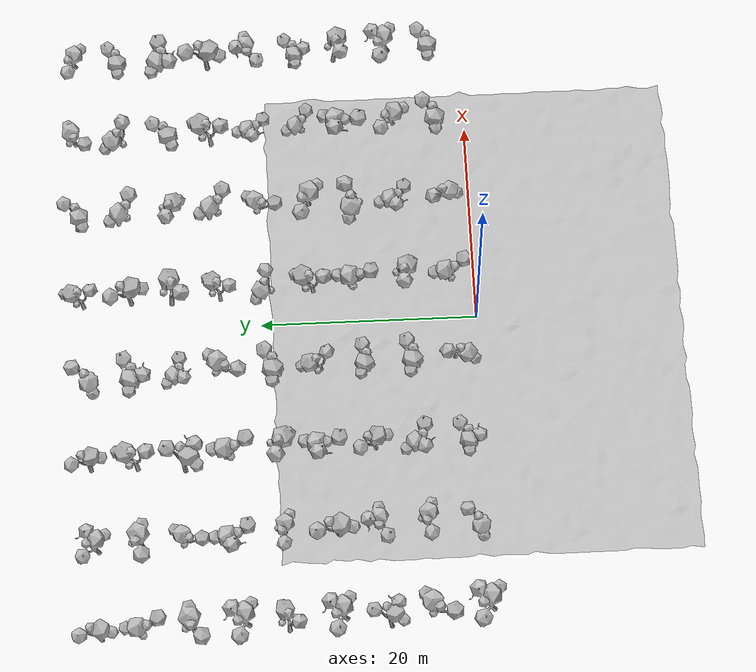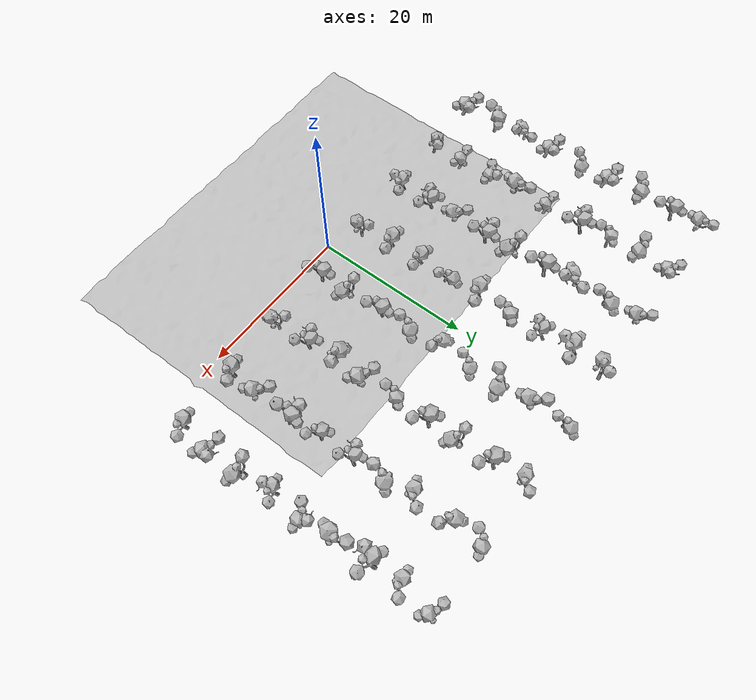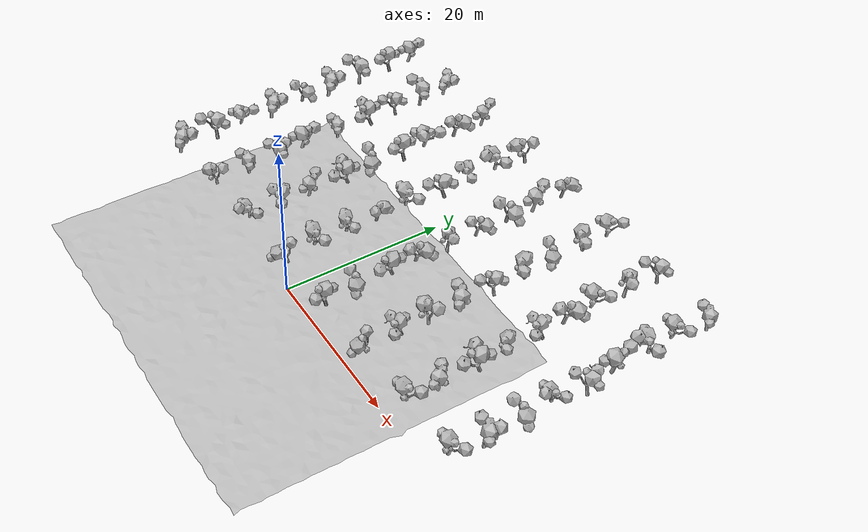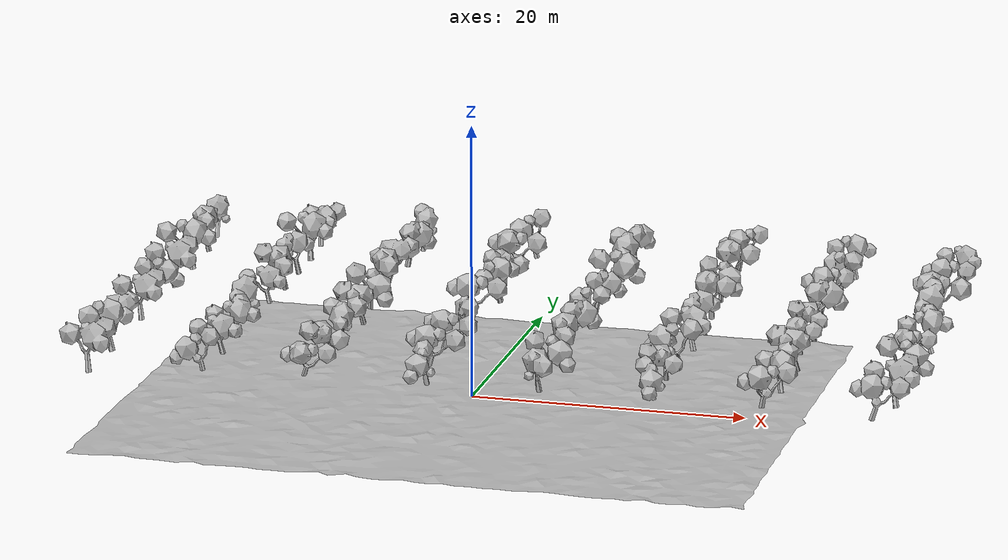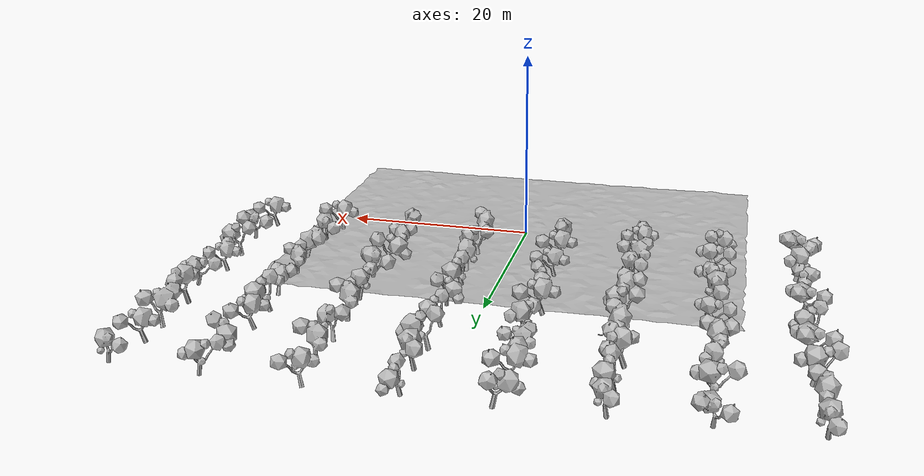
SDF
<sdf version="1.4">
 <world name="procedural_orchard">
  <model name="orchard_ground">
   <static>true</static>
   <link name="link">
    <collision name="col">
     <geometry><mesh><uri>model://orchard/orchard_world.dae</uri></mesh></geometry>
    </collision>
    <visual name="vis"><geometry><mesh><uri>model://orchard/orchard_world.dae</uri></mesh></geometry></visual>
   </link>
  </model>
  <model name="tree_1">
   <static>true</static>
   <pose>-30.349 35.8752 0 0 0 3.98007</pose>
   <link name="link">
    <visual name="visual">
     <geometry>
      <mesh><uri>model://orchard/orchard_tree_1.dae</uri><scale>2.42346 2.42346 2.42346</scale></mesh>
     </geometry>
    </visual>
    <collision name="trunk_collision">
     <pose>0 0 1 0 0 0</pose>
     <geometry><cylinder><radius>0.25</radius><length>2</length></cylinder></geometry>
    </collision>
   </link>
  </model>
  <model name="tree_2">
   <static>true</static>
   <pose>-21.9567 36.0772 0 0 0 3.64227</pose>
   <link name="link">
    <visual name="visual">
     <geometry>
      <mesh><uri>model://orchard/orchard_tree_5.dae</uri><scale>2.37712 2.37712 2.37712</scale></mesh>
     </geometry>
    </visual>
    <collision name="trunk_collision">
     <pose>0 0 1 0 0 0</pose>
     <geometry><cylinder><radius>0.25</radius><length>2</length></cylinder></geometry>
    </collision>
   </link>
  </model>
  <model name="tree_3">
   <static>true</static>
   <pose>-13.5645 36.2793 0 0 0 2.64878</pose>
   <link name="link">
    <visual name="visual">
     <geometry>
      <mesh><uri>model://orchard/orchard_tree_4.dae</uri><scale>2.35116 2.35116 2.35116</scale></mesh>
     </geometry>
    </visual>
    <collision name="trunk_collision">
     <pose>0 0 1 0 0 0</pose>
     <geometry><cylinder><radius>0.25</radius><length>2</length></cylinder></geometry>
    </collision>
   </link>
  </model>
  <model name="tree_4">
   <static>true</static>
   <pose>-5.17219 36.4813 0 0 0 2.39877</pose>
   <link name="link">
    <visual name="visual">
     <geometry>
      <mesh><uri>model://orchard/orchard_tree_3.dae</uri><scale>2.54865 2.54865 2.54865</scale></mesh>
     </geometry>
    </visual>
    <collision name="trunk_collision">
     <pose>0 0 1 0 0 0</pose>
     <geometry><cylinder><radius>0.25</radius><length>2</length></cylinder></geometry>
    </collision>
   </link>
  </model>
  <model name="tree_5">
   <static>true</static>
   <pose>3.22008 36.6834 0 0 0 6.21447</pose>
   <link name="link">
    <visual name="visual">
     <geometry>
      <mesh><uri>model://orchard/orchard_tree_3.dae</uri><scale>2.31543 2.31543 2.31543</scale></mesh>
     </geometry>
    </visual>
    <collision name="trunk_collision">
     <pose>0 0 1 0 0 0</pose>
     <geometry><cylinder><radius>0.25</radius><length>2</length></cylinder></geometry>
    </collision>
   </link>
  </model>
  <model name="tree_6">
   <static>true</static>
   <pose>11.6124 36.8855 0 0 0 1.43705</pose>
   <link name="link">
    <visual name="visual">
     <geometry>
      <mesh><uri>model://orchard/orchard_tree_4.dae</uri><scale>2.38347 2.38347 2.38347</scale></mesh>
     </geometry>
    </visual>
    <collision name="trunk_collision">
     <pose>0 0 1 0 0 0</pose>
     <geometry><cylinder><radius>0.25</radius><length>2</length></cylinder></geometry>
    </collision>
   </link>
  </model>
  <model name="tree_7">
   <static>true</static>
   <pose>20.0046 37.0875 0 0 0 4.54167</pose>
   <link name="link">
    <visual name="visual">
     <geometry>
      <mesh><uri>model://orchard/orchard_tree_4.dae</uri><scale>2.37984 2.37984 2.37984</scale></mesh>
     </geometry>
    </visual>
    <collision name="trunk_collision">
     <pose>0 0 1 0 0 0</pose>
     <geometry><cylinder><radius>0.25</radius><length>2</length></cylinder></geometry>
    </collision>
   </link>
  </model>
  <model name="tree_8">
   <static>true</static>
   <pose>28.3969 37.2896 0 0 0 5.00894</pose>
   <link name="link">
    <visual name="visual">
     <geometry>
      <mesh><uri>model://orchard/orchard_tree_1.dae</uri><scale>2.31265 2.31265 2.31265</scale></mesh>
     </geometry>
    </visual>
    <collision name="trunk_collision">
     <pose>0 0 1 0 0 0</pose>
     <geometry><cylinder><radius>0.25</radius><length>2</length></cylinder></geometry>
    </collision>
   </link>
  </model>
  <model name="tree_9">
   <static>true</static>
   <pose>-30.2198 31.5146 0 0 0 5.7149</pose>
   <link name="link">
    <visual name="visual">
     <geometry>
      <mesh><uri>model://orchard/orchard_tree_4.dae</uri><scale>2.52768 2.52768 2.52768</scale></mesh>
     </geometry>
    </visual>
    <collision name="trunk_collision">
     <pose>0 0 1 0 0 0</pose>
     <geometry><cylinder><radius>0.25</radius><length>2</length></cylinder></geometry>
    </collision>
   </link>
  </model>
  <model name="tree_10">
   <static>true</static>
   <pose>-21.8316 31.7329 0 0 0 3.92387</pose>
   <link name="link">
    <visual name="visual">
     <geometry>
      <mesh><uri>model://orchard/orchard_tree_4.dae</uri><scale>2.63545 2.63545 2.63545</scale></mesh>
     </geometry>
    </visual>
    <collision name="trunk_collision">
     <pose>0 0 1 0 0 0</pose>
     <geometry><cylinder><radius>0.25</radius><length>2</length></cylinder></geometry>
    </collision>
   </link>
  </model>
  <model name="tree_11">
   <static>true</static>
   <pose>-13.4435 31.9512 0 0 0 6.10366</pose>
   <link name="link">
    <visual name="visual">
     <geometry>
      <mesh><uri>model://orchard/orchard_tree_3.dae</uri><scale>2.59826 2.59826 2.59826</scale></mesh>
     </geometry>
    </visual>
    <collision name="trunk_collision">
     <pose>0 0 1 0 0 0</pose>
     <geometry><cylinder><radius>0.25</radius><length>2</length></cylinder></geometry>
    </collision>
   </link>
  </model>
  <model name="tree_12">
   <static>true</static>
   <pose>-5.0553 32.1694 0 0 0 1.4179</pose>
   <link name="link">
    <visual name="visual">
     <geometry>
      <mesh><uri>model://orchard/orchard_tree_5.dae</uri><scale>2.67865 2.67865 2.67865</scale></mesh>
     </geometry>
    </visual>
    <collision name="trunk_collision">
     <pose>0 0 1 0 0 0</pose>
     <geometry><cylinder><radius>0.25</radius><length>2</length></cylinder></geometry>
    </collision>
   </link>
  </model>
  <model name="tree_13">
   <static>true</static>
   <pose>3.33286 32.3877 0 0 0 2.68912</pose>
   <link name="link">
    <visual name="visual">
     <geometry>
      <mesh><uri>model://orchard/orchard_tree_4.dae</uri><scale>2.6427 2.6427 2.6427</scale></mesh>
     </geometry>
    </visual>
    <collision name="trunk_collision">
     <pose>0 0 1 0 0 0</pose>
     <geometry><cylinder><radius>0.25</radius><length>2</length></cylinder></geometry>
    </collision>
   </link>
  </model>
  <model name="tree_14">
   <static>true</static>
   <pose>11.721 32.606 0 0 0 0.158857</pose>
   <link name="link">
    <visual name="visual">
     <geometry>
      <mesh><uri>model://orchard/orchard_tree_4.dae</uri><scale>2.59692 2.59692 2.59692</scale></mesh>
     </geometry>
    </visual>
    <collision name="trunk_collision">
     <pose>0 0 1 0 0 0</pose>
     <geometry><cylinder><radius>0.25</radius><length>2</length></cylinder></geometry>
    </collision>
   </link>
  </model>
  <model name="tree_15">
   <static>true</static>
   <pose>20.1092 32.8242 0 0 0 0.981096</pose>
   <link name="link">
    <visual name="visual">
     <geometry>
      <mesh><uri>model://orchard/orchard_tree_3.dae</uri><scale>2.49143 2.49143 2.49143</scale></mesh>
     </geometry>
    </visual>
    <collision name="trunk_collision">
     <pose>0 0 1 0 0 0</pose>
     <geometry><cylinder><radius>0.25</radius><length>2</length></cylinder></geometry>
    </collision>
   </link>
  </model>
  <model name="tree_16">
   <static>true</static>
   <pose>28.4973 33.0425 0 0 0 2.65836</pose>
   <link name="link">
    <visual name="visual">
     <geometry>
      <mesh><uri>model://orchard/orchard_tree_1.dae</uri><scale>2.42857 2.42857 2.42857</scale></mesh>
     </geometry>
    </visual>
    <collision name="trunk_collision">
     <pose>0 0 1 0 0 0</pose>
     <geometry><cylinder><radius>0.25</radius><length>2</length></cylinder></geometry>
    </collision>
   </link>
  </model>
  <model name="tree_17">
   <static>true</static>
   <pose>-30.0906 27.1541 0 0 0 4.29002</pose>
   <link name="link">
    <visual name="visual">
     <geometry>
      <mesh><uri>model://orchard/orchard_tree_4.dae</uri><scale>2.70376 2.70376 2.70376</scale></mesh>
     </geometry>
    </visual>
    <collision name="trunk_collision">
     <pose>0 0 1 0 0 0</pose>
     <geometry><cylinder><radius>0.25</radius><length>2</length></cylinder></geometry>
    </collision>
   </link>
  </model>
  <model name="tree_18">
   <static>true</static>
   <pose>-21.7065 27.3886 0 0 0 5.07734</pose>
   <link name="link">
    <visual name="visual">
     <geometry>
      <mesh><uri>model://orchard/orchard_tree_4.dae</uri><scale>2.31329 2.31329 2.31329</scale></mesh>
     </geometry>
    </visual>
    <collision name="trunk_collision">
     <pose>0 0 1 0 0 0</pose>
     <geometry><cylinder><radius>0.25</radius><length>2</length></cylinder></geometry>
    </collision>
   </link>
  </model>
  <model name="tree_19">
   <static>true</static>
   <pose>-13.3225 27.623 0 0 0 2.28356</pose>
   <link name="link">
    <visual name="visual">
     <geometry>
      <mesh><uri>model://orchard/orchard_tree_5.dae</uri><scale>2.68747 2.68747 2.68747</scale></mesh>
     </geometry>
    </visual>
    <collision name="trunk_collision">
     <pose>0 0 1 0 0 0</pose>
     <geometry><cylinder><radius>0.25</radius><length>2</length></cylinder></geometry>
    </collision>
   </link>
  </model>
  <model name="tree_20">
   <static>true</static>
   <pose>-4.93842 27.8575 0 0 0 0.844092</pose>
   <link name="link">
    <visual name="visual">
     <geometry>
      <mesh><uri>model://orchard/orchard_tree_5.dae</uri><scale>2.29268 2.29268 2.29268</scale></mesh>
     </geometry>
    </visual>
    <collision name="trunk_collision">
     <pose>0 0 1 0 0 0</pose>
     <geometry><cylinder><radius>0.25</radius><length>2</length></cylinder></geometry>
    </collision>
   </link>
  </model>
  <model name="tree_21">
   <static>true</static>
   <pose>3.44563 28.092 0 0 0 5.22046</pose>
   <link name="link">
    <visual name="visual">
     <geometry>
      <mesh><uri>model://orchard/orchard_tree_3.dae</uri><scale>2.71954 2.71954 2.71954</scale></mesh>
     </geometry>
    </visual>
    <collision name="trunk_collision">
     <pose>0 0 1 0 0 0</pose>
     <geometry><cylinder><radius>0.25</radius><length>2</length></cylinder></geometry>
    </collision>
   </link>
  </model>
  <model name="tree_22">
   <static>true</static>
   <pose>11.8297 28.3265 0 0 0 4.32382</pose>
   <link name="link">
    <visual name="visual">
     <geometry>
      <mesh><uri>model://orchard/orchard_tree_3.dae</uri><scale>2.46313 2.46313 2.46313</scale></mesh>
     </geometry>
    </visual>
    <collision name="trunk_collision">
     <pose>0 0 1 0 0 0</pose>
     <geometry><cylinder><radius>0.25</radius><length>2</length></cylinder></geometry>
    </collision>
   </link>
  </model>
  <model name="tree_23">
   <static>true</static>
   <pose>20.2137 28.561 0 0 0 2.97546</pose>
   <link name="link">
    <visual name="visual">
     <geometry>
      <mesh><uri>model://orchard/orchard_tree_1.dae</uri><scale>2.49655 2.49655 2.49655</scale></mesh>
     </geometry>
    </visual>
    <collision name="trunk_collision">
     <pose>0 0 1 0 0 0</pose>
     <geometry><cylinder><radius>0.25</radius><length>2</length></cylinder></geometry>
    </collision>
   </link>
  </model>
  <model name="tree_24">
   <static>true</static>
   <pose>28.5978 28.7954 0 0 0 1.05184</pose>
   <link name="link">
    <visual name="visual">
     <geometry>
      <mesh><uri>model://orchard/orchard_tree_5.dae</uri><scale>2.74076 2.74076 2.74076</scale></mesh>
     </geometry>
    </visual>
    <collision name="trunk_collision">
     <pose>0 0 1 0 0 0</pose>
     <geometry><cylinder><radius>0.25</radius><length>2</length></cylinder></geometry>
    </collision>
   </link>
  </model>
  <model name="tree_25">
   <static>true</static>
   <pose>-29.9613 22.7935 0 0 0 4.08577</pose>
   <link name="link">
    <visual name="visual">
     <geometry>
      <mesh><uri>model://orchard/orchard_tree_5.dae</uri><scale>2.67586 2.67586 2.67586</scale></mesh>
     </geometry>
    </visual>
    <collision name="trunk_collision">
     <pose>0 0 1 0 0 0</pose>
     <geometry><cylinder><radius>0.25</radius><length>2</length></cylinder></geometry>
    </collision>
   </link>
  </model>
  <model name="tree_26">
   <static>true</static>
   <pose>-21.5814 23.0442 0 0 0 0.0465613</pose>
   <link name="link">
    <visual name="visual">
     <geometry>
      <mesh><uri>model://orchard/orchard_tree_5.dae</uri><scale>2.60549 2.60549 2.60549</scale></mesh>
     </geometry>
    </visual>
    <collision name="trunk_collision">
     <pose>0 0 1 0 0 0</pose>
     <geometry><cylinder><radius>0.25</radius><length>2</length></cylinder></geometry>
    </collision>
   </link>
  </model>
  <model name="tree_27">
   <static>true</static>
   <pose>-13.2015 23.2949 0 0 0 5.74862</pose>
   <link name="link">
    <visual name="visual">
     <geometry>
      <mesh><uri>model://orchard/orchard_tree_4.dae</uri><scale>2.64948 2.64948 2.64948</scale></mesh>
     </geometry>
    </visual>
    <collision name="trunk_collision">
     <pose>0 0 1 0 0 0</pose>
     <geometry><cylinder><radius>0.25</radius><length>2</length></cylinder></geometry>
    </collision>
   </link>
  </model>
  <model name="tree_28">
   <static>true</static>
   <pose>-4.82153 23.5456 0 0 0 0.260761</pose>
   <link name="link">
    <visual name="visual">
     <geometry>
      <mesh><uri>model://orchard/orchard_tree_1.dae</uri><scale>2.55489 2.55489 2.55489</scale></mesh>
     </geometry>
    </visual>
    <collision name="trunk_collision">
     <pose>0 0 1 0 0 0</pose>
     <geometry><cylinder><radius>0.25</radius><length>2</length></cylinder></geometry>
    </collision>
   </link>
  </model>
  <model name="tree_29">
   <static>true</static>
   <pose>3.55841 23.7963 0 0 0 5.75821</pose>
   <link name="link">
    <visual name="visual">
     <geometry>
      <mesh><uri>model://orchard/orchard_tree_3.dae</uri><scale>2.35889 2.35889 2.35889</scale></mesh>
     </geometry>
    </visual>
    <collision name="trunk_collision">
     <pose>0 0 1 0 0 0</pose>
     <geometry><cylinder><radius>0.25</radius><length>2</length></cylinder></geometry>
    </collision>
   </link>
  </model>
  <model name="tree_30">
   <static>true</static>
   <pose>11.9383 24.047 0 0 0 0.0113304</pose>
   <link name="link">
    <visual name="visual">
     <geometry>
      <mesh><uri>model://orchard/orchard_tree_4.dae</uri><scale>2.61767 2.61767 2.61767</scale></mesh>
     </geometry>
    </visual>
    <collision name="trunk_collision">
     <pose>0 0 1 0 0 0</pose>
     <geometry><cylinder><radius>0.25</radius><length>2</length></cylinder></geometry>
    </collision>
   </link>
  </model>
  <model name="tree_31">
   <static>true</static>
   <pose>20.3183 24.2977 0 0 0 5.91174</pose>
   <link name="link">
    <visual name="visual">
     <geometry>
      <mesh><uri>model://orchard/orchard_tree_3.dae</uri><scale>2.6887 2.6887 2.6887</scale></mesh>
     </geometry>
    </visual>
    <collision name="trunk_collision">
     <pose>0 0 1 0 0 0</pose>
     <geometry><cylinder><radius>0.25</radius><length>2</length></cylinder></geometry>
    </collision>
   </link>
  </model>
  <model name="tree_32">
   <static>true</static>
   <pose>28.6982 24.5484 0 0 0 2.30677</pose>
   <link name="link">
    <visual name="visual">
     <geometry>
      <mesh><uri>model://orchard/orchard_tree_4.dae</uri><scale>2.74544 2.74544 2.74544</scale></mesh>
     </geometry>
    </visual>
    <collision name="trunk_collision">
     <pose>0 0 1 0 0 0</pose>
     <geometry><cylinder><radius>0.25</radius><length>2</length></cylinder></geometry>
    </collision>
   </link>
  </model>
  <model name="tree_33">
   <static>true</static>
   <pose>-29.8321 18.433 0 0 0 5.40505</pose>
   <link name="link">
    <visual name="visual">
     <geometry>
      <mesh><uri>model://orchard/orchard_tree_3.dae</uri><scale>2.41502 2.41502 2.41502</scale></mesh>
     </geometry>
    </visual>
    <collision name="trunk_collision">
     <pose>0 0 1 0 0 0</pose>
     <geometry><cylinder><radius>0.25</radius><length>2</length></cylinder></geometry>
    </collision>
   </link>
  </model>
  <model name="tree_34">
   <static>true</static>
   <pose>-21.4563 18.6999 0 0 0 5.28899</pose>
   <link name="link">
    <visual name="visual">
     <geometry>
      <mesh><uri>model://orchard/orchard_tree_1.dae</uri><scale>2.29859 2.29859 2.29859</scale></mesh>
     </geometry>
    </visual>
    <collision name="trunk_collision">
     <pose>0 0 1 0 0 0</pose>
     <geometry><cylinder><radius>0.25</radius><length>2</length></cylinder></geometry>
    </collision>
   </link>
  </model>
  <model name="tree_35">
   <static>true</static>
   <pose>-13.0805 18.9668 0 0 0 4.35737</pose>
   <link name="link">
    <visual name="visual">
     <geometry>
      <mesh><uri>model://orchard/orchard_tree_3.dae</uri><scale>2.6948 2.6948 2.6948</scale></mesh>
     </geometry>
    </visual>
    <collision name="trunk_collision">
     <pose>0 0 1 0 0 0</pose>
     <geometry><cylinder><radius>0.25</radius><length>2</length></cylinder></geometry>
    </collision>
   </link>
  </model>
  <model name="tree_36">
   <static>true</static>
   <pose>-4.70465 19.2337 0 0 0 2.54146</pose>
   <link name="link">
    <visual name="visual">
     <geometry>
      <mesh><uri>model://orchard/orchard_tree_1.dae</uri><scale>2.66909 2.66909 2.66909</scale></mesh>
     </geometry>
    </visual>
    <collision name="trunk_collision">
     <pose>0 0 1 0 0 0</pose>
     <geometry><cylinder><radius>0.25</radius><length>2</length></cylinder></geometry>
    </collision>
   </link>
  </model>
  <model name="tree_37">
   <static>true</static>
   <pose>3.67118 19.5006 0 0 0 1.27832</pose>
   <link name="link">
    <visual name="visual">
     <geometry>
      <mesh><uri>model://orchard/orchard_tree_3.dae</uri><scale>2.35492 2.35492 2.35492</scale></mesh>
     </geometry>
    </visual>
    <collision name="trunk_collision">
     <pose>0 0 1 0 0 0</pose>
     <geometry><cylinder><radius>0.25</radius><length>2</length></cylinder></geometry>
    </collision>
   </link>
  </model>
  <model name="tree_38">
   <static>true</static>
   <pose>12.047 19.7675 0 0 0 5.10962</pose>
   <link name="link">
    <visual name="visual">
     <geometry>
      <mesh><uri>model://orchard/orchard_tree_4.dae</uri><scale>2.38214 2.38214 2.38214</scale></mesh>
     </geometry>
    </visual>
    <collision name="trunk_collision">
     <pose>0 0 1 0 0 0</pose>
     <geometry><cylinder><radius>0.25</radius><length>2</length></cylinder></geometry>
    </collision>
   </link>
  </model>
  <model name="tree_39">
   <static>true</static>
   <pose>20.4228 20.0344 0 0 0 0.194741</pose>
   <link name="link">
    <visual name="visual">
     <geometry>
      <mesh><uri>model://orchard/orchard_tree_5.dae</uri><scale>2.3134 2.3134 2.3134</scale></mesh>
     </geometry>
    </visual>
    <collision name="trunk_collision">
     <pose>0 0 1 0 0 0</pose>
     <geometry><cylinder><radius>0.25</radius><length>2</length></cylinder></geometry>
    </collision>
   </link>
  </model>
  <model name="tree_40">
   <static>true</static>
   <pose>28.7987 20.3013 0 0 0 4.81496</pose>
   <link name="link">
    <visual name="visual">
     <geometry>
      <mesh><uri>model://orchard/orchard_tree_5.dae</uri><scale>2.42638 2.42638 2.42638</scale></mesh>
     </geometry>
    </visual>
    <collision name="trunk_collision">
     <pose>0 0 1 0 0 0</pose>
     <geometry><cylinder><radius>0.25</radius><length>2</length></cylinder></geometry>
    </collision>
   </link>
  </model>
  <model name="tree_41">
   <static>true</static>
   <pose>-29.7029 14.0724 0 0 0 4.0446</pose>
   <link name="link">
    <visual name="visual">
     <geometry>
      <mesh><uri>model://orchard/orchard_tree_5.dae</uri><scale>2.60653 2.60653 2.60653</scale></mesh>
     </geometry>
    </visual>
    <collision name="trunk_collision">
     <pose>0 0 1 0 0 0</pose>
     <geometry><cylinder><radius>0.25</radius><length>2</length></cylinder></geometry>
    </collision>
   </link>
  </model>
  <model name="tree_42">
   <static>true</static>
   <pose>-21.3312 14.3555 0 0 0 3.9873</pose>
   <link name="link">
    <visual name="visual">
     <geometry>
      <mesh><uri>model://orchard/orchard_tree_1.dae</uri><scale>2.70212 2.70212 2.70212</scale></mesh>
     </geometry>
    </visual>
    <collision name="trunk_collision">
     <pose>0 0 1 0 0 0</pose>
     <geometry><cylinder><radius>0.25</radius><length>2</length></cylinder></geometry>
    </collision>
   </link>
  </model>
  <model name="tree_43">
   <static>true</static>
   <pose>-12.9595 14.6387 0 0 0 6.06099</pose>
   <link name="link">
    <visual name="visual">
     <geometry>
      <mesh><uri>model://orchard/orchard_tree_5.dae</uri><scale>2.64178 2.64178 2.64178</scale></mesh>
     </geometry>
    </visual>
    <collision name="trunk_collision">
     <pose>0 0 1 0 0 0</pose>
     <geometry><cylinder><radius>0.25</radius><length>2</length></cylinder></geometry>
    </collision>
   </link>
  </model>
  <model name="tree_44">
   <static>true</static>
   <pose>-4.58776 14.9218 0 0 0 0.388394</pose>
   <link name="link">
    <visual name="visual">
     <geometry>
      <mesh><uri>model://orchard/orchard_tree_3.dae</uri><scale>2.31822 2.31822 2.31822</scale></mesh>
     </geometry>
    </visual>
    <collision name="trunk_collision">
     <pose>0 0 1 0 0 0</pose>
     <geometry><cylinder><radius>0.25</radius><length>2</length></cylinder></geometry>
    </collision>
   </link>
  </model>
  <model name="tree_45">
   <static>true</static>
   <pose>3.78395 15.2049 0 0 0 5.97794</pose>
   <link name="link">
    <visual name="visual">
     <geometry>
      <mesh><uri>model://orchard/orchard_tree_3.dae</uri><scale>2.57837 2.57837 2.57837</scale></mesh>
     </geometry>
    </visual>
    <collision name="trunk_collision">
     <pose>0 0 1 0 0 0</pose>
     <geometry><cylinder><radius>0.25</radius><length>2</length></cylinder></geometry>
    </collision>
   </link>
  </model>
  <model name="tree_46">
   <static>true</static>
   <pose>12.1557 15.488 0 0 0 4.96116</pose>
   <link name="link">
    <visual name="visual">
     <geometry>
      <mesh><uri>model://orchard/orchard_tree_1.dae</uri><scale>2.66365 2.66365 2.66365</scale></mesh>
     </geometry>
    </visual>
    <collision name="trunk_collision">
     <pose>0 0 1 0 0 0</pose>
     <geometry><cylinder><radius>0.25</radius><length>2</length></cylinder></geometry>
    </collision>
   </link>
  </model>
  <model name="tree_47">
   <static>true</static>
   <pose>20.5274 15.7712 0 0 0 6.27959</pose>
   <link name="link">
    <visual name="visual">
     <geometry>
      <mesh><uri>model://orchard/orchard_tree_4.dae</uri><scale>2.25263 2.25263 2.25263</scale></mesh>
     </geometry>
    </visual>
    <collision name="trunk_collision">
     <pose>0 0 1 0 0 0</pose>
     <geometry><cylinder><radius>0.25</radius><length>2</length></cylinder></geometry>
    </collision>
   </link>
  </model>
  <model name="tree_48">
   <static>true</static>
   <pose>28.8991 16.0543 0 0 0 1.6569</pose>
   <link name="link">
    <visual name="visual">
     <geometry>
      <mesh><uri>model://orchard/orchard_tree_5.dae</uri><scale>2.29908 2.29908 2.29908</scale></mesh>
     </geometry>
    </visual>
    <collision name="trunk_collision">
     <pose>0 0 1 0 0 0</pose>
     <geometry><cylinder><radius>0.25</radius><length>2</length></cylinder></geometry>
    </collision>
   </link>
  </model>
  <model name="tree_49">
   <static>true</static>
   <pose>-29.5737 9.71186 0 0 0 2.45361</pose>
   <link name="link">
    <visual name="visual">
     <geometry>
      <mesh><uri>model://orchard/orchard_tree_5.dae</uri><scale>2.36628 2.36628 2.36628</scale></mesh>
     </geometry>
    </visual>
    <collision name="trunk_collision">
     <pose>0 0 1 0 0 0</pose>
     <geometry><cylinder><radius>0.25</radius><length>2</length></cylinder></geometry>
    </collision>
   </link>
  </model>
  <model name="tree_50">
   <static>true</static>
   <pose>-21.2061 10.0112 0 0 0 4.67009</pose>
   <link name="link">
    <visual name="visual">
     <geometry>
      <mesh><uri>model://orchard/orchard_tree_5.dae</uri><scale>2.3917 2.3917 2.3917</scale></mesh>
     </geometry>
    </visual>
    <collision name="trunk_collision">
     <pose>0 0 1 0 0 0</pose>
     <geometry><cylinder><radius>0.25</radius><length>2</length></cylinder></geometry>
    </collision>
   </link>
  </model>
  <model name="tree_51">
   <static>true</static>
   <pose>-12.8385 10.3105 0 0 0 2.86724</pose>
   <link name="link">
    <visual name="visual">
     <geometry>
      <mesh><uri>model://orchard/orchard_tree_4.dae</uri><scale>2.41802 2.41802 2.41802</scale></mesh>
     </geometry>
    </visual>
    <collision name="trunk_collision">
     <pose>0 0 1 0 0 0</pose>
     <geometry><cylinder><radius>0.25</radius><length>2</length></cylinder></geometry>
    </collision>
   </link>
  </model>
  <model name="tree_52">
   <static>true</static>
   <pose>-4.47088 10.6099 0 0 0 2.26553</pose>
   <link name="link">
    <visual name="visual">
     <geometry>
      <mesh><uri>model://orchard/orchard_tree_1.dae</uri><scale>2.41478 2.41478 2.41478</scale></mesh>
     </geometry>
    </visual>
    <collision name="trunk_collision">
     <pose>0 0 1 0 0 0</pose>
     <geometry><cylinder><radius>0.25</radius><length>2</length></cylinder></geometry>
    </collision>
   </link>
  </model>
  <model name="tree_53">
   <static>true</static>
   <pose>3.89673 10.9092 0 0 0 0.905595</pose>
   <link name="link">
    <visual name="visual">
     <geometry>
      <mesh><uri>model://orchard/orchard_tree_1.dae</uri><scale>2.59511 2.59511 2.59511</scale></mesh>
     </geometry>
    </visual>
    <collision name="trunk_collision">
     <pose>0 0 1 0 0 0</pose>
     <geometry><cylinder><radius>0.25</radius><length>2</length></cylinder></geometry>
    </collision>
   </link>
  </model>
  <model name="tree_54">
   <static>true</static>
   <pose>12.2643 11.2085 0 0 0 1.76289</pose>
   <link name="link">
    <visual name="visual">
     <geometry>
      <mesh><uri>model://orchard/orchard_tree_3.dae</uri><scale>2.70556 2.70556 2.70556</scale></mesh>
     </geometry>
    </visual>
    <collision name="trunk_collision">
     <pose>0 0 1 0 0 0</pose>
     <geometry><cylinder><radius>0.25</radius><length>2</length></cylinder></geometry>
    </collision>
   </link>
  </model>
  <model name="tree_55">
   <static>true</static>
   <pose>20.6319 11.5079 0 0 0 5.88927</pose>
   <link name="link">
    <visual name="visual">
     <geometry>
      <mesh><uri>model://orchard/orchard_tree_5.dae</uri><scale>2.7369 2.7369 2.7369</scale></mesh>
     </geometry>
    </visual>
    <collision name="trunk_collision">
     <pose>0 0 1 0 0 0</pose>
     <geometry><cylinder><radius>0.25</radius><length>2</length></cylinder></geometry>
    </collision>
   </link>
  </model>
  <model name="tree_56">
   <static>true</static>
   <pose>28.9995 11.8072 0 0 0 4.80413</pose>
   <link name="link">
    <visual name="visual">
     <geometry>
      <mesh><uri>model://orchard/orchard_tree_3.dae</uri><scale>2.61498 2.61498 2.61498</scale></mesh>
     </geometry>
    </visual>
    <collision name="trunk_collision">
     <pose>0 0 1 0 0 0</pose>
     <geometry><cylinder><radius>0.25</radius><length>2</length></cylinder></geometry>
    </collision>
   </link>
  </model>
  <model name="tree_57">
   <static>true</static>
   <pose>-29.4445 5.3513 0 0 0 4.83721</pose>
   <link name="link">
    <visual name="visual">
     <geometry>
      <mesh><uri>model://orchard/orchard_tree_4.dae</uri><scale>2.69531 2.69531 2.69531</scale></mesh>
     </geometry>
    </visual>
    <collision name="trunk_collision">
     <pose>0 0 1 0 0 0</pose>
     <geometry><cylinder><radius>0.25</radius><length>2</length></cylinder></geometry>
    </collision>
   </link>
  </model>
  <model name="tree_58">
   <static>true</static>
   <pose>-21.081 5.66685 0 0 0 5.45395</pose>
   <link name="link">
    <visual name="visual">
     <geometry>
      <mesh><uri>model://orchard/orchard_tree_1.dae</uri><scale>2.37736 2.37736 2.37736</scale></mesh>
     </geometry>
    </visual>
    <collision name="trunk_collision">
     <pose>0 0 1 0 0 0</pose>
     <geometry><cylinder><radius>0.25</radius><length>2</length></cylinder></geometry>
    </collision>
   </link>
  </model>
  <model name="tree_59">
   <static>true</static>
   <pose>-12.7175 5.9824 0 0 0 0.631934</pose>
   <link name="link">
    <visual name="visual">
     <geometry>
      <mesh><uri>model://orchard/orchard_tree_5.dae</uri><scale>2.46602 2.46602 2.46602</scale></mesh>
     </geometry>
    </visual>
    <collision name="trunk_collision">
     <pose>0 0 1 0 0 0</pose>
     <geometry><cylinder><radius>0.25</radius><length>2</length></cylinder></geometry>
    </collision>
   </link>
  </model>
  <model name="tree_60">
   <static>true</static>
   <pose>-4.35399 6.29796 0 0 0 2.41255</pose>
   <link name="link">
    <visual name="visual">
     <geometry>
      <mesh><uri>model://orchard/orchard_tree_1.dae</uri><scale>2.57018 2.57018 2.57018</scale></mesh>
     </geometry>
    </visual>
    <collision name="trunk_collision">
     <pose>0 0 1 0 0 0</pose>
     <geometry><cylinder><radius>0.25</radius><length>2</length></cylinder></geometry>
    </collision>
   </link>
  </model>
  <model name="tree_61">
   <static>true</static>
   <pose>4.0095 6.61351 0 0 0 4.52394</pose>
   <link name="link">
    <visual name="visual">
     <geometry>
      <mesh><uri>model://orchard/orchard_tree_3.dae</uri><scale>2.5575 2.5575 2.5575</scale></mesh>
     </geometry>
    </visual>
    <collision name="trunk_collision">
     <pose>0 0 1 0 0 0</pose>
     <geometry><cylinder><radius>0.25</radius><length>2</length></cylinder></geometry>
    </collision>
   </link>
  </model>
  <model name="tree_62">
   <static>true</static>
   <pose>12.373 6.92906 0 0 0 0.311472</pose>
   <link name="link">
    <visual name="visual">
     <geometry>
      <mesh><uri>model://orchard/orchard_tree_5.dae</uri><scale>2.36668 2.36668 2.36668</scale></mesh>
     </geometry>
    </visual>
    <collision name="trunk_collision">
     <pose>0 0 1 0 0 0</pose>
     <geometry><cylinder><radius>0.25</radius><length>2</length></cylinder></geometry>
    </collision>
   </link>
  </model>
  <model name="tree_63">
   <static>true</static>
   <pose>20.7365 7.24461 0 0 0 4.64829</pose>
   <link name="link">
    <visual name="visual">
     <geometry>
      <mesh><uri>model://orchard/orchard_tree_1.dae</uri><scale>2.49316 2.49316 2.49316</scale></mesh>
     </geometry>
    </visual>
    <collision name="trunk_collision">
     <pose>0 0 1 0 0 0</pose>
     <geometry><cylinder><radius>0.25</radius><length>2</length></cylinder></geometry>
    </collision>
   </link>
  </model>
  <model name="tree_64">
   <static>true</static>
   <pose>29.1 7.56016 0 0 0 4.08989</pose>
   <link name="link">
    <visual name="visual">
     <geometry>
      <mesh><uri>model://orchard/orchard_tree_5.dae</uri><scale>2.60196 2.60196 2.60196</scale></mesh>
     </geometry>
    </visual>
    <collision name="trunk_collision">
     <pose>0 0 1 0 0 0</pose>
     <geometry><cylinder><radius>0.25</radius><length>2</length></cylinder></geometry>
    </collision>
   </link>
  </model>
  <model name="tree_65">
   <static>true</static>
   <pose>-29.3153 0.990747 0 0 0 3.92526</pose>
   <link name="link">
    <visual name="visual">
     <geometry>
      <mesh><uri>model://orchard/orchard_tree_5.dae</uri><scale>2.74167 2.74167 2.74167</scale></mesh>
     </geometry>
    </visual>
    <collision name="trunk_collision">
     <pose>0 0 1 0 0 0</pose>
     <geometry><cylinder><radius>0.25</radius><length>2</length></cylinder></geometry>
    </collision>
   </link>
  </model>
  <model name="tree_66">
   <static>true</static>
   <pose>-20.9559 1.32251 0 0 0 2.22857</pose>
   <link name="link">
    <visual name="visual">
     <geometry>
      <mesh><uri>model://orchard/orchard_tree_3.dae</uri><scale>2.35708 2.35708 2.35708</scale></mesh>
     </geometry>
    </visual>
    <collision name="trunk_collision">
     <pose>0 0 1 0 0 0</pose>
     <geometry><cylinder><radius>0.25</radius><length>2</length></cylinder></geometry>
    </collision>
   </link>
  </model>
  <model name="tree_67">
   <static>true</static>
   <pose>-12.5965 1.65428 0 0 0 1.5413</pose>
   <link name="link">
    <visual name="visual">
     <geometry>
      <mesh><uri>model://orchard/orchard_tree_5.dae</uri><scale>2.36729 2.36729 2.36729</scale></mesh>
     </geometry>
    </visual>
    <collision name="trunk_collision">
     <pose>0 0 1 0 0 0</pose>
     <geometry><cylinder><radius>0.25</radius><length>2</length></cylinder></geometry>
    </collision>
   </link>
  </model>
  <model name="tree_68">
   <static>true</static>
   <pose>-4.23711 1.98604 0 0 0 3.14175</pose>
   <link name="link">
    <visual name="visual">
     <geometry>
      <mesh><uri>model://orchard/orchard_tree_3.dae</uri><scale>2.37722 2.37722 2.37722</scale></mesh>
     </geometry>
    </visual>
    <collision name="trunk_collision">
     <pose>0 0 1 0 0 0</pose>
     <geometry><cylinder><radius>0.25</radius><length>2</length></cylinder></geometry>
    </collision>
   </link>
  </model>
  <model name="tree_69">
   <static>true</static>
   <pose>4.12228 2.31781 0 0 0 5.85636</pose>
   <link name="link">
    <visual name="visual">
     <geometry>
      <mesh><uri>model://orchard/orchard_tree_4.dae</uri><scale>2.51899 2.51899 2.51899</scale></mesh>
     </geometry>
    </visual>
    <collision name="trunk_collision">
     <pose>0 0 1 0 0 0</pose>
     <geometry><cylinder><radius>0.25</radius><length>2</length></cylinder></geometry>
    </collision>
   </link>
  </model>
  <model name="tree_70">
   <static>true</static>
   <pose>12.4817 2.64957 0 0 0 3.59668</pose>
   <link name="link">
    <visual name="visual">
     <geometry>
      <mesh><uri>model://orchard/orchard_tree_3.dae</uri><scale>2.35602 2.35602 2.35602</scale></mesh>
     </geometry>
    </visual>
    <collision name="trunk_collision">
     <pose>0 0 1 0 0 0</pose>
     <geometry><cylinder><radius>0.25</radius><length>2</length></cylinder></geometry>
    </collision>
   </link>
  </model>
  <model name="tree_71">
   <static>true</static>
   <pose>20.841 2.98134 0 0 0 1.17769</pose>
   <link name="link">
    <visual name="visual">
     <geometry>
      <mesh><uri>model://orchard/orchard_tree_4.dae</uri><scale>2.56468 2.56468 2.56468</scale></mesh>
     </geometry>
    </visual>
    <collision name="trunk_collision">
     <pose>0 0 1 0 0 0</pose>
     <geometry><cylinder><radius>0.25</radius><length>2</length></cylinder></geometry>
    </collision>
   </link>
  </model>
  <model name="tree_72">
   <static>true</static>
   <pose>29.2004 3.3131 0 0 0 2.64396</pose>
   <link name="link">
    <visual name="visual">
     <geometry>
      <mesh><uri>model://orchard/orchard_tree_1.dae</uri><scale>2.50152 2.50152 2.50152</scale></mesh>
     </geometry>
    </visual>
    <collision name="trunk_collision">
     <pose>0 0 1 0 0 0</pose>
     <geometry><cylinder><radius>0.25</radius><length>2</length></cylinder></geometry>
    </collision>
   </link>
  </model>
 </world>
</sdf>
